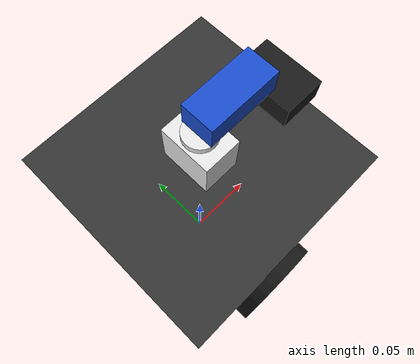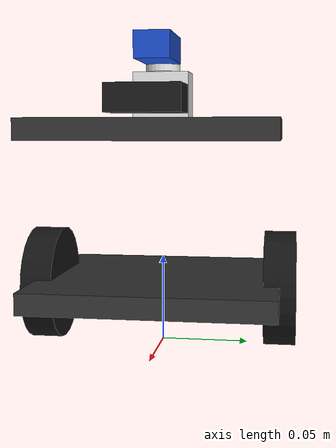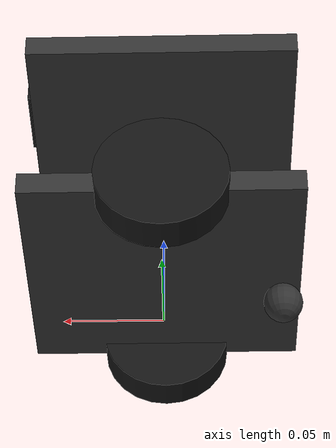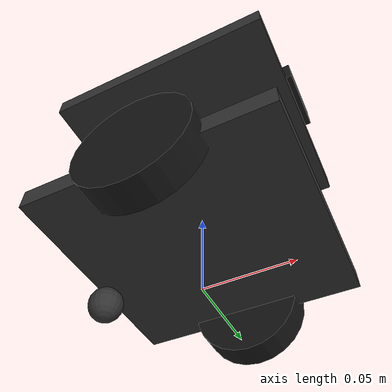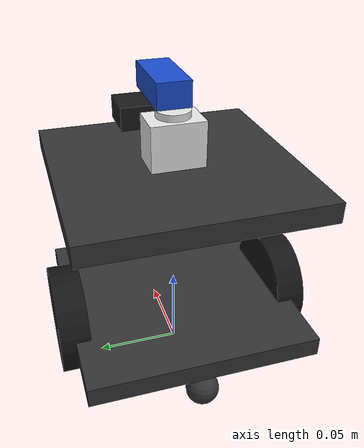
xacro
<?xml version="1.0"?>
<robot name="esibot" xmlns:xacro="http://www.ros.org/wiki/xacro">

  <xacro:include filename="$(find esibot_description)/urdf/materials.xacro"/>

  <!-- ── Properties — update with real chassis measurements ────────────────── -->
  <xacro:property name="base_width"       value="0.138"/>
  <xacro:property name="base_length"      value="0.140"/>
  <xacro:property name="base_height"      value="0.012"/>
  <xacro:property name="wheel_radius"     value="0.033"/>
  <xacro:property name="wheel_width"      value="0.018"/>
  <xacro:property name="wheel_separation" value="0.138"/>
  <xacro:property name="caster_radius"    value="0.010"/>
  <xacro:property name="spacer_height"    value="0.080"/>
  <xacro:property name="sensor_arm_x"    value="0.020"/>

  <!-- ── BASE FOOTPRINT ───────────────────────────────────────────────────── -->
  <link name="base_footprint"/>

  <joint name="base_footprint_joint" type="fixed">
    <parent link="base_footprint"/>
    <child  link="base_link"/>
    <origin xyz="0 0 ${wheel_radius}" rpy="0 0 0"/>
  </joint>

  <!-- ── BASE LINK (lower plate) ──────────────────────────────────────────── -->
  <link name="base_link">
    <visual>
      <geometry><box size="${base_length} ${base_width} ${base_height}"/></geometry>
      <material name="chassis_grey"/>
    </visual>
    <collision>
      <geometry><box size="${base_length} ${base_width} ${base_height}"/></geometry>
    </collision>
    <inertial>
      <mass value="0.3"/>
      <origin xyz="0 0 0" rpy="0 0 0"/>
      <inertia ixx="0.001" ixy="0" ixz="0" iyy="0.001" iyz="0" izz="0.001"/>
    </inertial>
  </link>

  <!-- ── UPPER PLATE ──────────────────────────────────────────────────────── -->
  <link name="upper_plate">
    <visual>
      <geometry><box size="${base_length} ${base_width} ${base_height}"/></geometry>
      <material name="chassis_grey"/>
    </visual>
    <collision>
      <geometry><box size="${base_length} ${base_width} ${base_height}"/></geometry>
    </collision>
    <inertial>
      <mass value="0.1"/>
      <origin xyz="0 0 0" rpy="0 0 0"/>
      <inertia ixx="0.0005" ixy="0" ixz="0" iyy="0.0005" iyz="0" izz="0.0005"/>
    </inertial>
  </link>

  <joint name="upper_plate_joint" type="fixed">
    <parent link="base_link"/>
    <child  link="upper_plate"/>
    <origin xyz="0 0 ${spacer_height + base_height}" rpy="0 0 0"/>
  </joint>

  <!-- ── WHEEL MACRO ──────────────────────────────────────────────────────── -->
  <xacro:macro name="drive_wheel" params="prefix reflect">
    <link name="${prefix}_wheel">
      <visual>
        <origin xyz="0 0 0" rpy="${pi/2} 0 0"/>
        <geometry><cylinder radius="${wheel_radius}" length="${wheel_width}"/></geometry>
        <material name="wheel_black"/>
      </visual>
      <collision>
        <origin xyz="0 0 0" rpy="${pi/2} 0 0"/>
        <geometry><cylinder radius="${wheel_radius}" length="${wheel_width}"/></geometry>
      </collision>
      <inertial>
        <mass value="0.030"/>
        <origin xyz="0 0 0" rpy="0 0 0"/>
        <inertia ixx="0.000016" ixy="0" ixz="0" iyy="0.000016" iyz="0" izz="0.000008"/>
      </inertial>
    </link>
    <joint name="${prefix}_wheel_joint" type="continuous">
      <parent link="base_link"/>
      <child  link="${prefix}_wheel"/>
      <origin xyz="0 ${reflect * wheel_separation / 2} 0" rpy="0 0 0"/>
      <axis xyz="0 1 0"/>
      <dynamics damping="0.01" friction="0.1"/>
    </joint>
  </xacro:macro>

  <xacro:drive_wheel prefix="left"  reflect="1"/>
  <xacro:drive_wheel prefix="right" reflect="-1"/>

  <!-- ── CASTER WHEEL ─────────────────────────────────────────────────────── -->
  <link name="caster_wheel">
    <visual>
      <geometry><sphere radius="${caster_radius}"/></geometry>
      <material name="chassis_grey"/>
    </visual>
    <collision>
      <geometry><sphere radius="${caster_radius}"/></geometry>
    </collision>
    <inertial>
      <mass value="0.005"/>
      <origin xyz="0 0 0" rpy="0 0 0"/>
      <inertia ixx="0.0000008" ixy="0" ixz="0" iyy="0.0000008" iyz="0" izz="0.0000008"/>
    </inertial>
  </link>

  <joint name="caster_joint" type="fixed">
    <parent link="base_link"/>
    <child  link="caster_wheel"/>
    <origin xyz="${-(base_length/2 - caster_radius)} 0 ${-(wheel_radius - caster_radius)}" rpy="0 0 0"/>
  </joint>

  <!-- ── SERVO BASE (SG90 body) ────────────────────────────────────────────── -->
  <link name="servo_base">
    <visual>
      <geometry><box size="0.023 0.032 0.027"/></geometry>
      <material name="servo_white"/>
    </visual>
    <collision>
      <geometry><box size="0.023 0.032 0.027"/></geometry>
    </collision>
    <inertial>
      <mass value="0.009"/>
      <origin xyz="0 0 0" rpy="0 0 0"/>
      <inertia ixx="0.0000003" ixy="0" ixz="0" iyy="0.0000003" iyz="0" izz="0.0000002"/>
    </inertial>
  </link>

  <joint name="servo_base_joint" type="fixed">
    <parent link="upper_plate"/>
    <child  link="servo_base"/>
    <origin xyz="0 0 ${base_height/2 + 0.0135}" rpy="0 0 0"/>
  </joint>

  <!-- ── SERVO LINK (SG90 horn — REVOLUTE) ────────────────────────────────── -->
  <link name="servo_link">
    <visual>
      <geometry><cylinder radius="0.010" length="0.004"/></geometry>
      <material name="servo_white"/>
    </visual>
    <collision>
      <geometry><cylinder radius="0.010" length="0.004"/></geometry>
    </collision>
    <inertial>
      <mass value="0.002"/>
      <origin xyz="0 0 0" rpy="0 0 0"/>
      <inertia ixx="0.00000005" ixy="0" ixz="0" iyy="0.00000005" iyz="0" izz="0.0000001"/>
    </inertial>
  </link>

  <joint name="servo_joint" type="revolute">
    <parent link="servo_base"/>
    <child  link="servo_link"/>
    <origin xyz="0 0 0.016" rpy="0 0 0"/>
    <axis xyz="0 0 1"/>
    <limit lower="${-pi}" upper="${pi}" effort="0.34" velocity="5.24"/>
    <dynamics damping="0.001" friction="0.001"/>
  </joint>

  <!-- ── LASER LINK (HC-SR04 ultrasonic sensor board) ─────────────────────── -->
  <link name="laser_link">
    <visual>
      <geometry><box size="0.045 0.020 0.015"/></geometry>
      <material name="hcsr04_blue"/>
    </visual>
    <collision>
      <geometry><box size="0.045 0.020 0.015"/></geometry>
    </collision>
    <inertial>
      <mass value="0.008"/>
      <origin xyz="0 0 0" rpy="0 0 0"/>
      <inertia ixx="0.0000001" ixy="0" ixz="0" iyy="0.0000001" iyz="0" izz="0.0000001"/>
    </inertial>
  </link>

  <joint name="laser_joint" type="fixed">
    <parent link="servo_link"/>
    <child  link="laser_link"/>
    <origin xyz="${sensor_arm_x} 0 0.010" rpy="0 0 0"/>
  </joint>

  <!-- ── ESP32-CAM ─────────────────────────────────────────────────────────── -->
  <link name="camera_link">
    <visual>
      <geometry><box size="0.027 0.040 0.015"/></geometry>
      <material name="esp32_black"/>
    </visual>
    <collision>
      <geometry><box size="0.027 0.040 0.015"/></geometry>
    </collision>
    <inertial>
      <mass value="0.010"/>
      <origin xyz="0 0 0" rpy="0 0 0"/>
      <inertia ixx="0.0000001" ixy="0" ixz="0" iyy="0.0000001" iyz="0" izz="0.0000001"/>
    </inertial>
  </link>

  <link name="camera_optical_frame"/>

  <joint name="camera_joint" type="fixed">
    <parent link="upper_plate"/>
    <child  link="camera_link"/>
    <origin xyz="${base_length/2 - 0.010} 0 ${base_height/2 + 0.010}" rpy="0 0 0"/>
  </joint>

  <joint name="camera_optical_joint" type="fixed">
    <parent link="camera_link"/>
    <child  link="camera_optical_frame"/>
    <origin xyz="0 0 0" rpy="${-pi/2} 0 ${-pi/2}"/>
  </joint>

  <!-- ── IMU LINK (placeholder) ────────────────────────────────────────────── -->
  <link name="imu_link"/>
  <joint name="imu_joint" type="fixed">
    <parent link="base_link"/>
    <child  link="imu_link"/>
    <origin xyz="0 0 0" rpy="0 0 0"/>
  </joint>

  <!-- ════════════════════════════════════════════════════════════════════════
       GAZEBO PLUGINS
  ════════════════════════════════════════════════════════════════════════ -->

<!-- 1. Differential Drive -->
<gazebo>
  <plugin filename="gz-sim-diff-drive-system"
          name="gz::sim::systems::DiffDrive">
    <left_joint>left_wheel_joint</left_joint>
    <right_joint>right_wheel_joint</right_joint>
    <wheel_separation>0.138</wheel_separation>
    <wheel_radius>0.033</wheel_radius>
    <max_linear_acceleration>1.0</max_linear_acceleration>
    <topic>cmd_vel</topic>
    <odom_topic>odom</odom_topic>
    <frame_id>odom</frame_id>
    <child_frame_id>base_footprint</child_frame_id>
    <odom_publish_frequency>30</odom_publish_frequency>
  </plugin>
</gazebo>

<!-- 2. Joint State Publisher -->
<gazebo>
  <plugin filename="gz-sim-joint-state-publisher-system"
          name="gz::sim::systems::JointStatePublisher">
    <joint_name>left_wheel_joint</joint_name>
    <joint_name>right_wheel_joint</joint_name>
    <joint_name>servo_joint</joint_name>
    <topic>joint_states</topic>
    <update_rate>30</update_rate>
  </plugin>
</gazebo>

<!-- 3. HC-SR04 Ray Sensor -->
<gazebo reference="laser_link">
  <sensor name="ultrasound" type="gpu_lidar">
    <always_on>true</always_on>
    <update_rate>20</update_rate>
    <visualize>false</visualize>
    <topic>ultrasound_raw</topic>
    <lidar>
      <scan>
        <horizontal>
          <samples>36</samples> <resolution>1</resolution>
          <min_angle>-1.57</min_angle> <max_angle>1.57</max_angle>
        </horizontal>
      </scan>
      <range>
        <min>0.02</min>
        <max>4.00</max>
        <resolution>0.003</resolution>
      </range>
      <noise><type>gaussian</type><mean>0.0</mean><stddev>0.003</stddev></noise>
    </lidar>
  </sensor>
</gazebo>

<!-- 4. ESP32-CAM -->
<gazebo reference="camera_link">
  <sensor name="esp32_camera" type="camera">
    <always_on>true</always_on>
    <update_rate>15.0</update_rate>
    <visualize>false</visualize>
    <topic>camera/image_raw</topic>
    <camera>
      <horizontal_fov>1.0472</horizontal_fov>
      <image><width>640</width><height>480</height><format>R8G8B8</format></image>
      <clip><near>0.05</near><far>10.0</far></clip>
    </camera>
  </sensor>
</gazebo>

</robot>

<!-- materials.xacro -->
<robot name="esibot_materials" xmlns:xacro="http://www.ros.org/wiki/xacro">

  <!-- Structural -->
  <material name="chassis_grey">
    <color rgba="0.20 0.20 0.20 1.0"/>
  </material>

  <material name="spacer_silver">
    <color rgba="0.75 0.75 0.75 1.0"/>
  </material>

  <!-- Wheels -->
  <material name="wheel_black">
    <color rgba="0.08 0.08 0.08 1.0"/>
  </material>

  <!-- Servo SG90 body -->
  <material name="servo_white">
    <color rgba="0.90 0.90 0.90 1.0"/>
  </material>

  <!-- HC-SR04 PCB -->
  <material name="hcsr04_blue">
    <color rgba="0.10 0.30 0.80 1.0"/>
  </material>

  <!-- ESP32-CAM PCB -->
  <material name="esp32_black">
    <color rgba="0.10 0.10 0.10 1.0"/>
  </material>

  <!-- Raspberry Pi 4 PCB -->
  <material name="rpi_green">
    <color rgba="0.13 0.55 0.13 1.0"/>
  </material>

  <!-- L298N motor driver (bright red PCB) -->
  <material name="l298n_red">
    <color rgba="0.80 0.08 0.08 1.0"/>
  </material>

  <!-- Yellow DC motors -->
  <material name="motor_yellow">
    <color rgba="0.90 0.75 0.00 1.0"/>
  </material>

  <!-- Orange accent (battery, wires) -->
  <material name="lipo_orange">
    <color rgba="0.95 0.45 0.05 1.0"/>
  </material>

  <!-- Transparent (sensors, for debug visualization) -->
  <material name="transparent">
    <color rgba="1.0 1.0 1.0 0.0"/>
  </material>

  <!-- Chassis plates (lower + upper) -->
  <gazebo reference="base_link">
    <material>Gazebo/DarkGrey</material>
    <mu1>0.5</mu1>
    <mu2>0.5</mu2>
  </gazebo>

  <gazebo reference="upper_plate">
    <material>Gazebo/DarkGrey</material>
  </gazebo>

  <!-- Wheels -->
  <gazebo reference="left_wheel">
    <material>Gazebo/Black</material>
    <mu1>1.0</mu1>
    <mu2>1.0</mu2>
    <kp>1000000.0</kp>
    <kd>100.0</kd>
    <minDepth>0.001</minDepth>
    <maxVel>1.0</maxVel>
  </gazebo>

  <gazebo reference="right_wheel">
    <material>Gazebo/Black</material>
    <mu1>1.0</mu1>
    <mu2>1.0</mu2>
    <kp>1000000.0</kp>
    <kd>100.0</kd>
    <minDepth>0.001</minDepth>
    <maxVel>1.0</maxVel>
  </gazebo>

  <!-- Caster: zero friction so it rolls freely in any direction -->
  <gazebo reference="caster_wheel">
    <material>Gazebo/DarkGrey</material>
    <mu1>0.001</mu1>
    <mu2>0.001</mu2>
    <kp>1000000.0</kp>
    <kd>100.0</kd>
    <minDepth>0.001</minDepth>
    <maxVel>1.0</maxVel>
  </gazebo>

  <!-- Servo SG90 body -->
  <gazebo reference="servo_base">
    <material>Gazebo/White</material>
  </gazebo>

  <!-- Servo horn / rotating arm -->
  <gazebo reference="servo_link">
    <material>Gazebo/White</material>
  </gazebo>

  <!-- HC-SR04 sensor -->
  <gazebo reference="laser_link">
    <material>Gazebo/Blue</material>
  </gazebo>

  <!-- ESP32-CAM -->
  <gazebo reference="camera_link">
    <material>Gazebo/Black</material>
  </gazebo>

</robot>
